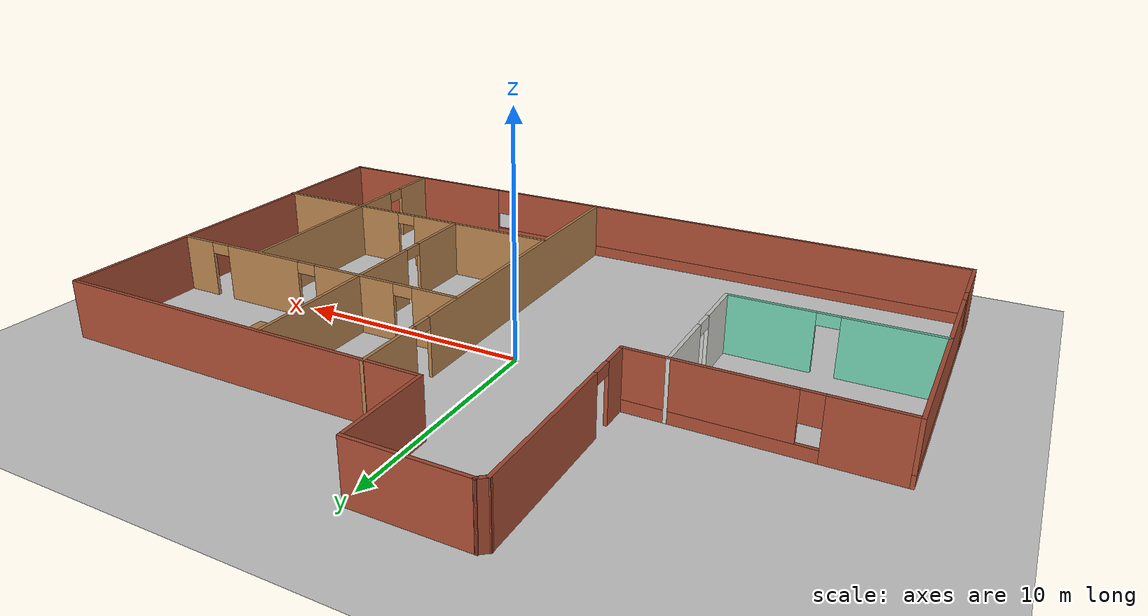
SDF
<sdf version="1.6">
 <world name="default">
  <model name="ground_plane">
   <static>1</static>
   <link name="link">
    <collision name="collision">
     <geometry><plane><normal>0 0 1</normal><size>100 100</size></plane></geometry>
     <surface>
      <contact><collide_bitmask>65535</collide_bitmask></contact>
      <friction><ode><mu>100</mu><mu2>50</mu2></ode></friction>
     </surface>
    </collision>
    <visual name="visual">
     <cast_shadows>0</cast_shadows>
     <geometry><plane><normal>0 0 1</normal><size>100 100</size></plane></geometry>
     <material>
      <script><uri>file://media/materials/scripts/gazebo.material</uri><name>Gazebo/Grey</name></script>
     </material>
    </visual>
   </link>
  </model>
  <model name="strange_room_project_1">
   <pose>0.77042 -0.5223 0 0 -0 0</pose>
   <link name="Wall_1">
    <collision name="Wall_1_Collision">
     <geometry><box><size>4.75 0.15 2.5</size></box></geometry>
     <pose>0 0 1.25 0 -0 0</pose>
    </collision>
    <visual name="Wall_1_Visual">
     <pose>0 0 1.25 0 -0 0</pose>
     <geometry><box><size>4.75 0.15 2.5</size></box></geometry>
     <material>
      <script><uri>file://media/materials/scripts/gazebo.material</uri><name>Gazebo/Bricks</name></script>
      <ambient>0.435294 0.796078 0.67451 1</ambient>
     </material>
     <meta><layer>0</layer></meta>
    </visual>
    <pose>-3.26123 11.2097 0 0 -0 0</pose>
   </link>
   <link name="Wall_10">
    <collision name="Wall_10_Collision">
     <geometry><box><size>0.540512 0.15 2.5</size></box></geometry>
     <pose>0 0 1.25 0 -0 0</pose>
    </collision>
    <visual name="Wall_10_Visual">
     <pose>0 0 1.25 0 -0 0</pose>
     <geometry><box><size>0.540512 0.15 2.5</size></box></geometry>
     <material>
      <script><uri>file://media/materials/scripts/gazebo.material</uri><name>Gazebo/Bricks</name></script>
      <ambient>0.435294 0.796078 0.67451 1</ambient>
     </material>
     <meta><layer>0</layer></meta>
    </visual>
    <pose>-5.71122 11.0847 0 0 -0 0.694738</pose>
   </link>
   <link name="Wall_12">
    <pose>-7.58378 -0.937122 0 0 0 -1.5708</pose>
    <visual name="Wall_12_Visual_0">
     <pose>-1.59262 0 1.25 0 -0 0</pose>
     <geometry><box><size>3.06475 0.15 2.5</size></box></geometry>
     <material>
      <script><uri>file://media/materials/scripts/gazebo.material</uri><name>Gazebo/CeilingTiled</name></script>
      <ambient>0.435294 0.796078 0.67451 1</ambient>
     </material>
     <meta><layer>0</layer></meta>
    </visual>
    <collision name="Wall_12_Collision_0">
     <geometry><box><size>3.06475 0.15 2.5</size></box></geometry>
     <pose>-1.59262 0 1.25 0 -0 0</pose>
    </collision>
    <visual name="Wall_12_Visual_1">
     <pose>1.98238 0 1.25 0 -0 0</pose>
     <geometry><box><size>2.28525 0.15 2.5</size></box></geometry>
     <material>
      <script><uri>file://media/materials/scripts/gazebo.material</uri><name>Gazebo/CeilingTiled</name></script>
      <ambient>0.435294 0.796078 0.67451 1</ambient>
     </material>
     <meta><layer>0</layer></meta>
    </visual>
    <collision name="Wall_12_Collision_1">
     <geometry><box><size>2.28525 0.15 2.5</size></box></geometry>
     <pose>1.98238 0 1.25 0 -0 0</pose>
    </collision>
    <visual name="Wall_12_Visual_2">
     <pose>0.389755 0 2.25 0 -0 0</pose>
     <geometry><box><size>0.9 0.15 0.5</size></box></geometry>
     <material>
      <script><uri>file://media/materials/scripts/gazebo.material</uri><name>Gazebo/CeilingTiled</name></script>
      <ambient>0.435294 0.796078 0.67451 1</ambient>
     </material>
     <meta><layer>0</layer></meta>
    </visual>
    <collision name="Wall_12_Collision_2">
     <geometry><box><size>0.9 0.15 0.5</size></box></geometry>
     <pose>0.389755 0 2.25 0 -0 0</pose>
    </collision>
   </link>
   <link name="Wall_15">
    <pose>-11.6338 -3.98712 0 0 -0 3.14159</pose>
    <visual name="Wall_15_Visual_0">
     <pose>-2.35227 0 1.25 0 -0 0</pose>
     <geometry><box><size>3.54546 0.15 2.5</size></box></geometry>
     <material>
      <script><uri>file://media/materials/scripts/gazebo.material</uri><name>Gazebo/Grey</name></script>
      <ambient>0.435294 0.796078 0.67451 1</ambient>
     </material>
     <meta><layer>0</layer></meta>
    </visual>
    <collision name="Wall_15_Collision_0">
     <geometry><box><size>3.54546 0.15 2.5</size></box></geometry>
     <pose>-2.35227 0 1.25 0 -0 0</pose>
    </collision>
    <visual name="Wall_15_Visual_1">
     <pose>2.22273 0 1.25 0 -0 0</pose>
     <geometry><box><size>3.80455 0.15 2.5</size></box></geometry>
     <material>
      <script><uri>file://media/materials/scripts/gazebo.material</uri><name>Gazebo/Grey</name></script>
      <ambient>0.435294 0.796078 0.67451 1</ambient>
     </material>
     <meta><layer>0</layer></meta>
    </visual>
    <collision name="Wall_15_Collision_1">
     <geometry><box><size>3.80455 0.15 2.5</size></box></geometry>
     <pose>2.22273 0 1.25 0 -0 0</pose>
    </collision>
    <visual name="Wall_15_Visual_2">
     <pose>-0.129545 0 2.25 0 -0 0</pose>
     <geometry><box><size>0.9 0.15 0.5</size></box></geometry>
     <material>
      <script><uri>file://media/materials/scripts/gazebo.material</uri><name>Gazebo/Grey</name></script>
      <ambient>0.435294 0.796078 0.67451 1</ambient>
     </material>
     <meta><layer>0</layer></meta>
    </visual>
    <collision name="Wall_15_Collision_2">
     <geometry><box><size>0.9 0.15 0.5</size></box></geometry>
     <pose>-0.129545 0 2.25 0 -0 0</pose>
    </collision>
   </link>
   <link name="Wall_17">
    <pose>1.35237 -2.03802 0 0 0 -1.5708</pose>
    <visual name="Wall_17_Visual_0">
     <pose>-7.7112 0 1.25 0 -0 0</pose>
     <geometry><box><size>3.07761 0.15 2.5</size></box></geometry>
     <material>
      <script><uri>file://media/materials/scripts/gazebo.material</uri><name>Gazebo/Wood</name></script>
      <ambient>0.435294 0.796078 0.67451 1</ambient>
     </material>
     <meta><layer>0</layer></meta>
    </visual>
    <collision name="Wall_17_Collision_0">
     <geometry><box><size>3.07761 0.15 2.5</size></box></geometry>
     <pose>-7.7112 0 1.25 0 -0 0</pose>
    </collision>
    <visual name="Wall_17_Visual_1">
     <pose>1.9888 0 1.25 0 -0 0</pose>
     <geometry><box><size>14.5224 0.15 2.5</size></box></geometry>
     <material>
      <script><uri>file://media/materials/scripts/gazebo.material</uri><name>Gazebo/Wood</name></script>
      <ambient>0.435294 0.796078 0.67451 1</ambient>
     </material>
     <meta><layer>0</layer></meta>
    </visual>
    <collision name="Wall_17_Collision_1">
     <geometry><box><size>14.5224 0.15 2.5</size></box></geometry>
     <pose>1.9888 0 1.25 0 -0 0</pose>
    </collision>
    <visual name="Wall_17_Visual_2">
     <pose>-5.72239 0 2.25 0 -0 0</pose>
     <geometry><box><size>0.9 0.15 0.5</size></box></geometry>
     <material>
      <script><uri>file://media/materials/scripts/gazebo.material</uri><name>Gazebo/Wood</name></script>
      <ambient>0.435294 0.796078 0.67451 1</ambient>
     </material>
     <meta><layer>0</layer></meta>
    </visual>
    <collision name="Wall_17_Collision_2">
     <geometry><box><size>0.9 0.15 0.5</size></box></geometry>
     <pose>-5.72239 0 2.25 0 -0 0</pose>
    </collision>
   </link>
   <link name="Wall_19">
    <pose>8.46168 1.25779 0 0 -0 0</pose>
    <visual name="Wall_19_Visual_0">
     <pose>-6.07739 0 1.25 0 -0 0</pose>
     <geometry><box><size>2.09521 0.15 2.5</size></box></geometry>
     <material>
      <script><uri>file://media/materials/scripts/gazebo.material</uri><name>Gazebo/Wood</name></script>
      <ambient>0.435294 0.796078 0.67451 1</ambient>
     </material>
     <meta><layer>0</layer></meta>
    </visual>
    <collision name="Wall_19_Collision_0">
     <geometry><box><size>2.09521 0.15 2.5</size></box></geometry>
     <pose>-6.07739 0 1.25 0 -0 0</pose>
    </collision>
    <visual name="Wall_19_Visual_1">
     <pose>-2.13756 0 1.25 0 -0 0</pose>
     <geometry><box><size>3.98446 0.15 2.5</size></box></geometry>
     <material>
      <script><uri>file://media/materials/scripts/gazebo.material</uri><name>Gazebo/Wood</name></script>
      <ambient>0.435294 0.796078 0.67451 1</ambient>
     </material>
     <meta><layer>0</layer></meta>
    </visual>
    <collision name="Wall_19_Collision_1">
     <geometry><box><size>3.98446 0.15 2.5</size></box></geometry>
     <pose>-2.13756 0 1.25 0 -0 0</pose>
    </collision>
    <visual name="Wall_19_Visual_2">
     <pose>2.70297 0 1.25 0 -0 0</pose>
     <geometry><box><size>3.8966 0.15 2.5</size></box></geometry>
     <material>
      <script><uri>file://media/materials/scripts/gazebo.material</uri><name>Gazebo/Wood</name></script>
      <ambient>0.435294 0.796078 0.67451 1</ambient>
     </material>
     <meta><layer>0</layer></meta>
    </visual>
    <collision name="Wall_19_Collision_2">
     <geometry><box><size>3.8966 0.15 2.5</size></box></geometry>
     <pose>2.70297 0 1.25 0 -0 0</pose>
    </collision>
    <visual name="Wall_19_Visual_3">
     <pose>6.33814 0 1.25 0 -0 0</pose>
     <geometry><box><size>1.57373 0.15 2.5</size></box></geometry>
     <material>
      <script><uri>file://media/materials/scripts/gazebo.material</uri><name>Gazebo/Wood</name></script>
      <ambient>0.435294 0.796078 0.67451 1</ambient>
     </material>
     <meta><layer>0</layer></meta>
    </visual>
    <collision name="Wall_19_Collision_3">
     <geometry><box><size>1.57373 0.15 2.5</size></box></geometry>
     <pose>6.33814 0 1.25 0 -0 0</pose>
    </collision>
    <visual name="Wall_19_Visual_4">
     <pose>-4.57979 0 2.25 0 -0 0</pose>
     <geometry><box><size>0.9 0.15 0.5</size></box></geometry>
     <material>
      <script><uri>file://media/materials/scripts/gazebo.material</uri><name>Gazebo/Wood</name></script>
      <ambient>0.435294 0.796078 0.67451 1</ambient>
     </material>
     <meta><layer>0</layer></meta>
    </visual>
    <collision name="Wall_19_Collision_4">
     <geometry><box><size>0.9 0.15 0.5</size></box></geometry>
     <pose>-4.57979 0 2.25 0 -0 0</pose>
    </collision>
    <visual name="Wall_19_Visual_5">
     <pose>0.304668 0 2.25 0 -0 0</pose>
     <geometry><box><size>0.9 0.15 0.5</size></box></geometry>
     <material>
      <script><uri>file://media/materials/scripts/gazebo.material</uri><name>Gazebo/Wood</name></script>
      <ambient>0.435294 0.796078 0.67451 1</ambient>
     </material>
     <meta><layer>0</layer></meta>
    </visual>
    <collision name="Wall_19_Collision_5">
     <geometry><box><size>0.9 0.15 0.5</size></box></geometry>
     <pose>0.304668 0 2.25 0 -0 0</pose>
    </collision>
    <visual name="Wall_19_Visual_6">
     <pose>5.10127 0 2.25 0 -0 0</pose>
     <geometry><box><size>0.9 0.15 0.5</size></box></geometry>
     <material>
      <script><uri>file://media/materials/scripts/gazebo.material</uri><name>Gazebo/Wood</name></script>
      <ambient>0.435294 0.796078 0.67451 1</ambient>
     </material>
     <meta><layer>0</layer></meta>
    </visual>
    <collision name="Wall_19_Collision_6">
     <geometry><box><size>0.9 0.15 0.5</size></box></geometry>
     <pose>5.10127 0 2.25 0 -0 0</pose>
    </collision>
   </link>
   <link name="Wall_2">
    <collision name="Wall_2_Collision">
     <geometry><box><size>4.25 0.15 2.5</size></box></geometry>
     <pose>0 0 1.25 0 -0 0</pose>
    </collision>
    <visual name="Wall_2_Visual">
     <pose>0 0 1.25 0 -0 0</pose>
     <geometry><box><size>4.25 0.15 2.5</size></box></geometry>
     <material>
      <script><uri>file://media/materials/scripts/gazebo.material</uri><name>Gazebo/Bricks</name></script>
      <ambient>0.435294 0.796078 0.67451 1</ambient>
     </material>
     <meta><layer>0</layer></meta>
    </visual>
    <pose>-0.961225 9.15968 0 0 0 -1.5708</pose>
   </link>
   <link name="Wall_3">
    <collision name="Wall_3_Collision">
     <geometry><box><size>16.75 0.15 2.5</size></box></geometry>
     <pose>0 0 1.25 0 -0 0</pose>
    </collision>
    <visual name="Wall_3_Visual">
     <pose>0 0 1.25 0 -0 0</pose>
     <geometry><box><size>16.75 0.15 2.5</size></box></geometry>
     <material>
      <script><uri>file://media/materials/scripts/gazebo.material</uri><name>Gazebo/Bricks</name></script>
      <ambient>0.435294 0.796078 0.67451 1</ambient>
     </material>
     <meta><layer>0</layer></meta>
    </visual>
    <pose>7.33878 7.10969 0 0 -0 0</pose>
   </link>
   <link name="Wall_4">
    <collision name="Wall_4_Collision">
     <geometry><box><size>18.5 0.15 2.5</size></box></geometry>
     <pose>0 0 1.25 0 -0 0</pose>
    </collision>
    <visual name="Wall_4_Visual">
     <pose>0 0 1.25 0 -0 0</pose>
     <geometry><box><size>18.5 0.15 2.5</size></box></geometry>
     <material>
      <script><uri>file://media/materials/scripts/gazebo.material</uri><name>Gazebo/Bricks</name></script>
      <ambient>0.435294 0.796078 0.67451 1</ambient>
     </material>
     <meta><layer>0</layer></meta>
    </visual>
    <pose>15.6388 -2.06532 0 0 0 -1.5708</pose>
   </link>
   <link name="Wall_5">
    <pose>-0.036225 -11.2403 0 0 -0 3.14159</pose>
    <visual name="Wall_5_Visual_0">
     <pose>-11.2976 0 1.25 0 -0 0</pose>
     <geometry><box><size>8.90478 0.15 2.5</size></box></geometry>
     <material>
      <script><uri>file://media/materials/scripts/gazebo.material</uri><name>Gazebo/Bricks</name></script>
      <ambient>0.435294 0.796078 0.67451 1</ambient>
     </material>
     <meta><layer>0</layer></meta>
    </visual>
    <collision name="Wall_5_Collision_0">
     <geometry><box><size>8.90478 0.15 2.5</size></box></geometry>
     <pose>-11.2976 0 1.25 0 -0 0</pose>
    </collision>
    <visual name="Wall_5_Visual_1">
     <pose>4.45239 0 0.25 0 -0 0</pose>
     <geometry><box><size>22.5952 0.15 0.5</size></box></geometry>
     <material>
      <script><uri>file://media/materials/scripts/gazebo.material</uri><name>Gazebo/Bricks</name></script>
      <ambient>0.435294 0.796078 0.67451 1</ambient>
     </material>
     <meta><layer>0</layer></meta>
    </visual>
    <collision name="Wall_5_Collision_1">
     <geometry><box><size>22.5952 0.15 0.5</size></box></geometry>
     <pose>4.45239 0 0.25 0 -0 0</pose>
    </collision>
    <visual name="Wall_5_Visual_2">
     <pose>4.85239 0 1.5 0 -0 0</pose>
     <geometry><box><size>21.7952 0.15 2</size></box></geometry>
     <material>
      <script><uri>file://media/materials/scripts/gazebo.material</uri><name>Gazebo/Bricks</name></script>
      <ambient>0.435294 0.796078 0.67451 1</ambient>
     </material>
     <meta><layer>0</layer></meta>
    </visual>
    <collision name="Wall_5_Collision_2">
     <geometry><box><size>21.7952 0.15 2</size></box></geometry>
     <pose>4.85239 0 1.5 0 -0 0</pose>
    </collision>
    <visual name="Wall_5_Visual_3">
     <pose>-6.44522 0 1.9 0 -0 0</pose>
     <geometry><box><size>0.8 0.15 1.2</size></box></geometry>
     <material>
      <script><uri>file://media/materials/scripts/gazebo.material</uri><name>Gazebo/Bricks</name></script>
      <ambient>0.435294 0.796078 0.67451 1</ambient>
     </material>
     <meta><layer>0</layer></meta>
    </visual>
    <collision name="Wall_5_Collision_3">
     <geometry><box><size>0.8 0.15 1.2</size></box></geometry>
     <pose>-6.44522 0 1.9 0 -0 0</pose>
    </collision>
   </link>
   <link name="Wall_6">
    <pose>-15.7112 -4.56531 0 0 -0 1.5708</pose>
    <visual name="Wall_6_Visual_0">
     <pose>-5.38753 0 1.25 0 -0 0</pose>
     <geometry><box><size>2.72495 0.15 2.5</size></box></geometry>
     <material>
      <script><uri>file://media/materials/scripts/gazebo.material</uri><name>Gazebo/Bricks</name></script>
      <ambient>0.435294 0.796078 0.67451 1</ambient>
     </material>
     <meta><layer>0</layer></meta>
    </visual>
    <collision name="Wall_6_Collision_0">
     <geometry><box><size>2.72495 0.15 2.5</size></box></geometry>
     <pose>-5.38753 0 1.25 0 -0 0</pose>
    </collision>
    <visual name="Wall_6_Visual_1">
     <pose>1.36247 0 0.25 0 -0 0</pose>
     <geometry><box><size>10.7751 0.15 0.5</size></box></geometry>
     <material>
      <script><uri>file://media/materials/scripts/gazebo.material</uri><name>Gazebo/Bricks</name></script>
      <ambient>0.435294 0.796078 0.67451 1</ambient>
     </material>
     <meta><layer>0</layer></meta>
    </visual>
    <collision name="Wall_6_Collision_1">
     <geometry><box><size>10.7751 0.15 0.5</size></box></geometry>
     <pose>1.36247 0 0.25 0 -0 0</pose>
    </collision>
    <visual name="Wall_6_Visual_2">
     <pose>1.76247 0 1.5 0 -0 0</pose>
     <geometry><box><size>9.97505 0.15 2</size></box></geometry>
     <material>
      <script><uri>file://media/materials/scripts/gazebo.material</uri><name>Gazebo/Bricks</name></script>
      <ambient>0.435294 0.796078 0.67451 1</ambient>
     </material>
     <meta><layer>0</layer></meta>
    </visual>
    <collision name="Wall_6_Collision_2">
     <geometry><box><size>9.97505 0.15 2</size></box></geometry>
     <pose>1.76247 0 1.5 0 -0 0</pose>
    </collision>
    <visual name="Wall_6_Visual_3">
     <pose>-3.62505 0 1.9 0 -0 0</pose>
     <geometry><box><size>0.8 0.15 1.2</size></box></geometry>
     <material>
      <script><uri>file://media/materials/scripts/gazebo.material</uri><name>Gazebo/Bricks</name></script>
      <ambient>0.435294 0.796078 0.67451 1</ambient>
     </material>
     <meta><layer>0</layer></meta>
    </visual>
    <collision name="Wall_6_Collision_3">
     <geometry><box><size>0.8 0.15 1.2</size></box></geometry>
     <pose>-3.62505 0 1.9 0 -0 0</pose>
    </collision>
   </link>
   <link name="Wall_65">
    <pose>8.53623 -5.87592 0 0 -0 3.14159</pose>
    <visual name="Wall_65_Visual_0">
     <pose>-3.95776 0 1.25 0 -0 0</pose>
     <geometry><box><size>6.58449 0.15 2.5</size></box></geometry>
     <material>
      <script><uri>file://media/materials/scripts/gazebo.material</uri><name>Gazebo/Wood</name></script>
      <ambient>0.435294 0.796078 0.67451 1</ambient>
     </material>
     <meta><layer>0</layer></meta>
    </visual>
    <collision name="Wall_65_Collision_0">
     <geometry><box><size>6.58449 0.15 2.5</size></box></geometry>
     <pose>-3.95776 0 1.25 0 -0 0</pose>
    </collision>
    <visual name="Wall_65_Visual_1">
     <pose>3.74224 0 1.25 0 -0 0</pose>
     <geometry><box><size>7.01551 0.15 2.5</size></box></geometry>
     <material>
      <script><uri>file://media/materials/scripts/gazebo.material</uri><name>Gazebo/Wood</name></script>
      <ambient>0.435294 0.796078 0.67451 1</ambient>
     </material>
     <meta><layer>0</layer></meta>
    </visual>
    <collision name="Wall_65_Collision_1">
     <geometry><box><size>7.01551 0.15 2.5</size></box></geometry>
     <pose>3.74224 0 1.25 0 -0 0</pose>
    </collision>
    <visual name="Wall_65_Visual_2">
     <pose>-0.215513 0 2.25 0 -0 0</pose>
     <geometry><box><size>0.9 0.15 0.5</size></box></geometry>
     <material>
      <script><uri>file://media/materials/scripts/gazebo.material</uri><name>Gazebo/Wood</name></script>
      <ambient>0.435294 0.796078 0.67451 1</ambient>
     </material>
     <meta><layer>0</layer></meta>
    </visual>
    <collision name="Wall_65_Collision_2">
     <geometry><box><size>0.9 0.15 0.5</size></box></geometry>
     <pose>-0.215513 0 2.25 0 -0 0</pose>
    </collision>
   </link>
   <link name="Wall_7">
    <pose>-10.7862 2.10968 0 0 -0 0</pose>
    <visual name="Wall_7_Visual_0">
     <pose>-3.51411 0 1.25 0 -0 0</pose>
     <geometry><box><size>2.97177 0.15 2.5</size></box></geometry>
     <material>
      <script><uri>file://media/materials/scripts/gazebo.material</uri><name>Gazebo/Bricks</name></script>
      <ambient>0.435294 0.796078 0.67451 1</ambient>
     </material>
     <meta><layer>0</layer></meta>
    </visual>
    <collision name="Wall_7_Collision_0">
     <geometry><box><size>2.97177 0.15 2.5</size></box></geometry>
     <pose>-3.51411 0 1.25 0 -0 0</pose>
    </collision>
    <visual name="Wall_7_Visual_1">
     <pose>1.48589 0 0.25 0 -0 0</pose>
     <geometry><box><size>7.02823 0.15 0.5</size></box></geometry>
     <material>
      <script><uri>file://media/materials/scripts/gazebo.material</uri><name>Gazebo/Bricks</name></script>
      <ambient>0.435294 0.796078 0.67451 1</ambient>
     </material>
     <meta><layer>0</layer></meta>
    </visual>
    <collision name="Wall_7_Collision_1">
     <geometry><box><size>7.02823 0.15 0.5</size></box></geometry>
     <pose>1.48589 0 0.25 0 -0 0</pose>
    </collision>
    <visual name="Wall_7_Visual_2">
     <pose>1.88589 0 1.5 0 -0 0</pose>
     <geometry><box><size>6.22823 0.15 2</size></box></geometry>
     <material>
      <script><uri>file://media/materials/scripts/gazebo.material</uri><name>Gazebo/Bricks</name></script>
      <ambient>0.435294 0.796078 0.67451 1</ambient>
     </material>
     <meta><layer>0</layer></meta>
    </visual>
    <collision name="Wall_7_Collision_2">
     <geometry><box><size>6.22823 0.15 2</size></box></geometry>
     <pose>1.88589 0 1.5 0 -0 0</pose>
    </collision>
    <visual name="Wall_7_Visual_3">
     <pose>-1.62823 0 1.9 0 -0 0</pose>
     <geometry><box><size>0.8 0.15 1.2</size></box></geometry>
     <material>
      <script><uri>file://media/materials/scripts/gazebo.material</uri><name>Gazebo/Bricks</name></script>
      <ambient>0.435294 0.796078 0.67451 1</ambient>
     </material>
     <meta><layer>0</layer></meta>
    </visual>
    <collision name="Wall_7_Collision_3">
     <geometry><box><size>0.8 0.15 1.2</size></box></geometry>
     <pose>-1.62823 0 1.9 0 -0 0</pose>
    </collision>
   </link>
   <link name="Wall_74">
    <pose>11.3966 -5.06353 0 0 -0 1.5708</pose>
    <visual name="Wall_74_Visual_0">
     <pose>-5.1078 0 1.25 0 -0 0</pose>
     <geometry><box><size>2.2844 0.15 2.5</size></box></geometry>
     <material>
      <script><uri>file://media/materials/scripts/gazebo.material</uri><name>Gazebo/Wood</name></script>
      <ambient>0.435294 0.796078 0.67451 1</ambient>
     </material>
     <meta><layer>0</layer></meta>
    </visual>
    <collision name="Wall_74_Collision_0">
     <geometry><box><size>2.2844 0.15 2.5</size></box></geometry>
     <pose>-5.1078 0 1.25 0 -0 0</pose>
    </collision>
    <visual name="Wall_74_Visual_1">
     <pose>1.5922 0 1.25 0 -0 0</pose>
     <geometry><box><size>9.3156 0.15 2.5</size></box></geometry>
     <material>
      <script><uri>file://media/materials/scripts/gazebo.material</uri><name>Gazebo/Wood</name></script>
      <ambient>0.435294 0.796078 0.67451 1</ambient>
     </material>
     <meta><layer>0</layer></meta>
    </visual>
    <collision name="Wall_74_Collision_1">
     <geometry><box><size>9.3156 0.15 2.5</size></box></geometry>
     <pose>1.5922 0 1.25 0 -0 0</pose>
    </collision>
    <visual name="Wall_74_Visual_2">
     <pose>-3.5156 0 2.25 0 -0 0</pose>
     <geometry><box><size>0.9 0.15 0.5</size></box></geometry>
     <material>
      <script><uri>file://media/materials/scripts/gazebo.material</uri><name>Gazebo/Wood</name></script>
      <ambient>0.435294 0.796078 0.67451 1</ambient>
     </material>
     <meta><layer>0</layer></meta>
    </visual>
    <collision name="Wall_74_Collision_2">
     <geometry><box><size>0.9 0.15 0.5</size></box></geometry>
     <pose>-3.5156 0 2.25 0 -0 0</pose>
    </collision>
   </link>
   <link name="Wall_76">
    <pose>6.03149 0.555756 0 0 -0 1.5708</pose>
    <visual name="Wall_76_Visual_0">
     <pose>-4.96159 0 1.25 0 -0 0</pose>
     <geometry><box><size>3.07682 0.15 2.5</size></box></geometry>
     <material>
      <script><uri>file://media/materials/scripts/gazebo.material</uri><name>Gazebo/Wood</name></script>
      <ambient>0.435294 0.796078 0.67451 1</ambient>
     </material>
     <meta><layer>0</layer></meta>
    </visual>
    <collision name="Wall_76_Collision_0">
     <geometry><box><size>3.07682 0.15 2.5</size></box></geometry>
     <pose>-4.96159 0 1.25 0 -0 0</pose>
    </collision>
    <visual name="Wall_76_Visual_1">
     <pose>1.98841 0 1.25 0 -0 0</pose>
     <geometry><box><size>9.02318 0.15 2.5</size></box></geometry>
     <material>
      <script><uri>file://media/materials/scripts/gazebo.material</uri><name>Gazebo/Wood</name></script>
      <ambient>0.435294 0.796078 0.67451 1</ambient>
     </material>
     <meta><layer>0</layer></meta>
    </visual>
    <collision name="Wall_76_Collision_1">
     <geometry><box><size>9.02318 0.15 2.5</size></box></geometry>
     <pose>1.98841 0 1.25 0 -0 0</pose>
    </collision>
    <visual name="Wall_76_Visual_2">
     <pose>-2.97318 0 2.25 0 -0 0</pose>
     <geometry><box><size>0.9 0.15 0.5</size></box></geometry>
     <material>
      <script><uri>file://media/materials/scripts/gazebo.material</uri><name>Gazebo/Wood</name></script>
      <ambient>0.435294 0.796078 0.67451 1</ambient>
     </material>
     <meta><layer>0</layer></meta>
    </visual>
    <collision name="Wall_76_Collision_2">
     <geometry><box><size>0.9 0.15 0.5</size></box></geometry>
     <pose>-2.97318 0 2.25 0 -0 0</pose>
    </collision>
   </link>
   <link name="Wall_9">
    <pose>-5.86123 6.53468 0 0 -0 1.5708</pose>
    <visual name="Wall_9_Visual_0">
     <pose>-3.86428 0 1.25 0 -0 0</pose>
     <geometry><box><size>1.27144 0.15 2.5</size></box></geometry>
     <material>
      <script><uri>file://media/materials/scripts/gazebo.material</uri><name>Gazebo/Bricks</name></script>
      <ambient>0.435294 0.796078 0.67451 1</ambient>
     </material>
     <meta><layer>0</layer></meta>
    </visual>
    <collision name="Wall_9_Collision_0">
     <geometry><box><size>1.27144 0.15 2.5</size></box></geometry>
     <pose>-3.86428 0 1.25 0 -0 0</pose>
    </collision>
    <visual name="Wall_9_Visual_1">
     <pose>1.08572 0 1.25 0 -0 0</pose>
     <geometry><box><size>6.82856 0.15 2.5</size></box></geometry>
     <material>
      <script><uri>file://media/materials/scripts/gazebo.material</uri><name>Gazebo/Bricks</name></script>
      <ambient>0.435294 0.796078 0.67451 1</ambient>
     </material>
     <meta><layer>0</layer></meta>
    </visual>
    <collision name="Wall_9_Collision_1">
     <geometry><box><size>6.82856 0.15 2.5</size></box></geometry>
     <pose>1.08572 0 1.25 0 -0 0</pose>
    </collision>
    <visual name="Wall_9_Visual_2">
     <pose>-2.77856 0 2.25 0 -0 0</pose>
     <geometry><box><size>0.9 0.15 0.5</size></box></geometry>
     <material>
      <script><uri>file://media/materials/scripts/gazebo.material</uri><name>Gazebo/Bricks</name></script>
      <ambient>0.435294 0.796078 0.67451 1</ambient>
     </material>
     <meta><layer>0</layer></meta>
    </visual>
    <collision name="Wall_9_Collision_2">
     <geometry><box><size>0.9 0.15 0.5</size></box></geometry>
     <pose>-2.77856 0 2.25 0 -0 0</pose>
    </collision>
   </link>
   <static>1</static>
  </model>
  <model name="two_wheel_robot_0">
   <link name="link_0_clone">
    <pose>-4e-06 -0.250033 -1e-06 1.5707 -0 0</pose>
    <inertial>
     <mass>1</mass>
     <inertia><ixx>0.145833</ixx><ixy>0</ixy><ixz>0</ixz><iyy>0.145833</iyy><iyz>0</iyz><izz>0.125</izz></inertia>
    </inertial>
    <visual name="visual">
     <geometry><cylinder><radius>0.3</radius><length>0.1</length></cylinder></geometry>
     <material>
      <lighting>1</lighting>
      <script><uri>file://media/materials/scripts/gazebo.material</uri><name>Gazebo/Grey</name></script>
      <shader type="pixel"><normal_map>__default__</normal_map></shader>
      <ambient>0.3 0.3 0.3 1</ambient>
      <diffuse>0.7 0.7 0.7 1</diffuse>
      <specular>0.01 0.01 0.01 1</specular>
      <emissive>0 0 0 1</emissive>
     </material>
    </visual>
    <collision name="collision">
     <geometry><cylinder><radius>0.3</radius><length>0.1</length></cylinder></geometry>
     <surface>
      <friction>
       <ode><mu>1</mu><mu2>1</mu2><fdir1>0 0 0</fdir1><slip1>0</slip1><slip2>0</slip2></ode>
       <torsional>
        <coefficient>1</coefficient>
        <patch_radius>0</patch_radius>
        <surface_radius>0</surface_radius>
        <use_patch_radius>1</use_patch_radius>
        <ode><slip>0</slip></ode>
       </torsional>
      </friction>
      <bounce><restitution_coefficient>0</restitution_coefficient><threshold>1e+06</threshold></bounce>
      <contact>
       <collide_without_contact>0</collide_without_contact>
       <collide_without_contact_bitmask>1</collide_without_contact_bitmask>
       <collide_bitmask>1</collide_bitmask>
       <ode>
        <soft_cfm>0</soft_cfm>
        <soft_erp>0.2</soft_erp>
        <kp>1e+13</kp>
        <kd>1</kd>
        <max_vel>0.01</max_vel>
        <min_depth>0</min_depth>
       </ode>
       <bullet>
        <split_impulse>1</split_impulse>
        <split_impulse_penetration_threshold>-0.01</split_impulse_penetration_threshold>
        <soft_cfm>0</soft_cfm>
        <soft_erp>0.2</soft_erp>
        <kp>1e+13</kp>
        <kd>1</kd>
       </bullet>
      </contact>
     </surface>
    </collision>
   </link>
   <link name="link_0_clone_clone">
    <pose>0 0.319647 1e-06 1.5707 -0 0</pose>
    <inertial>
     <mass>1</mass>
     <inertia><ixx>0.145833</ixx><ixy>0</ixy><ixz>0</ixz><iyy>0.145833</iyy><iyz>0</iyz><izz>0.125</izz></inertia>
    </inertial>
    <visual name="visual">
     <geometry><cylinder><radius>0.3</radius><length>0.1</length></cylinder></geometry>
     <material>
      <lighting>1</lighting>
      <script><uri>file://media/materials/scripts/gazebo.material</uri><name>Gazebo/Grey</name></script>
      <shader type="pixel"><normal_map>__default__</normal_map></shader>
      <ambient>0.3 0.3 0.3 1</ambient>
      <diffuse>0.7 0.7 0.7 1</diffuse>
      <specular>0.01 0.01 0.01 1</specular>
      <emissive>0 0 0 1</emissive>
     </material>
    </visual>
    <collision name="collision">
     <geometry><cylinder><radius>0.3</radius><length>0.1</length></cylinder></geometry>
     <surface>
      <friction>
       <ode><mu>1</mu><mu2>1</mu2><fdir1>0 0 0</fdir1><slip1>0</slip1><slip2>0</slip2></ode>
       <torsional>
        <coefficient>1</coefficient>
        <patch_radius>0</patch_radius>
        <surface_radius>0</surface_radius>
        <use_patch_radius>1</use_patch_radius>
        <ode><slip>0</slip></ode>
       </torsional>
      </friction>
      <bounce><restitution_coefficient>0</restitution_coefficient><threshold>1e+06</threshold></bounce>
      <contact>
       <collide_without_contact>0</collide_without_contact>
       <collide_without_contact_bitmask>1</collide_without_contact_bitmask>
       <collide_bitmask>1</collide_bitmask>
       <ode>
        <soft_cfm>0</soft_cfm>
        <soft_erp>0.2</soft_erp>
        <kp>1e+13</kp>
        <kd>1</kd>
        <max_vel>0.01</max_vel>
        <min_depth>0</min_depth>
       </ode>
       <bullet>
        <split_impulse>1</split_impulse>
        <split_impulse_penetration_threshold>-0.01</split_impulse_penetration_threshold>
        <soft_cfm>0</soft_cfm>
        <soft_erp>0.2</soft_erp>
        <kp>1e+13</kp>
        <kd>1</kd>
       </bullet>
      </contact>
     </surface>
    </collision>
   </link>
   <link name="link_1">
    <pose>-0 -1e-06 0 0 -0 0</pose>
    <inertial>
     <mass>1</mass>
     <inertia>
      <ixx>0.166667</ixx>
      <ixy>0</ixy>
      <ixz>0</ixz>
      <iyy>0.166667</iyy>
      <iyz>0</iyz>
      <izz>0.166667</izz>
     </inertia>
    </inertial>
    <visual name="visual">
     <geometry><box><size>0.3 0.4 0.1</size></box></geometry>
     <material>
      <lighting>1</lighting>
      <script><uri>file://media/materials/scripts/gazebo.material</uri><name>Gazebo/Grey</name></script>
      <shader type="pixel"><normal_map>__default__</normal_map></shader>
      <ambient>0.3 0.3 0.3 1</ambient>
      <diffuse>0.7 0.7 0.7 1</diffuse>
      <specular>0.01 0.01 0.01 1</specular>
      <emissive>0 0 0 1</emissive>
     </material>
    </visual>
    <collision name="collision">
     <geometry><box><size>0.3 0.4 0.1</size></box></geometry>
     <surface>
      <friction>
       <ode><mu>1</mu><mu2>1</mu2><fdir1>0 0 0</fdir1><slip1>0</slip1><slip2>0</slip2></ode>
       <torsional>
        <coefficient>1</coefficient>
        <patch_radius>0</patch_radius>
        <surface_radius>0</surface_radius>
        <use_patch_radius>1</use_patch_radius>
        <ode><slip>0</slip></ode>
       </torsional>
      </friction>
      <bounce><restitution_coefficient>0</restitution_coefficient><threshold>1e+06</threshold></bounce>
      <contact>
       <collide_without_contact>0</collide_without_contact>
       <collide_without_contact_bitmask>1</collide_without_contact_bitmask>
       <collide_bitmask>1</collide_bitmask>
       <ode>
        <soft_cfm>0</soft_cfm>
        <soft_erp>0.2</soft_erp>
        <kp>1e+13</kp>
        <kd>1</kd>
        <max_vel>0.01</max_vel>
        <min_depth>0</min_depth>
       </ode>
       <bullet>
        <split_impulse>1</split_impulse>
        <split_impulse_penetration_threshold>-0.01</split_impulse_penetration_threshold>
        <soft_cfm>0</soft_cfm>
        <soft_erp>0.2</soft_erp>
        <kp>1e+13</kp>
        <kd>1</kd>
       </bullet>
      </contact>
     </surface>
    </collision>
   </link>
   <joint name="link_1_JOINT_0" type="revolute">
    <parent>link_1</parent>
    <child>link_0_clone</child>
    <axis>
     <xyz>0 0 1</xyz>
     <use_parent_model_frame>0</use_parent_model_frame>
     <limit>
      <lower>-1.79769e+308</lower>
      <upper>1.79769e+308</upper>
      <effort>-1</effort>
      <velocity>-1</velocity>
     </limit>
     <dynamics>
      <spring_reference>0</spring_reference>
      <spring_stiffness>0</spring_stiffness>
      <damping>0</damping>
     </dynamics>
    </axis>
    <physics>
     <ode><limit><cfm>0</cfm><erp>0.2</erp></limit><suspension><cfm>0</cfm><erp>0.2</erp></suspension></ode>
    </physics>
   </joint>
   <joint name="link_1_JOINT_1" type="revolute">
    <parent>link_1</parent>
    <child>link_0_clone_clone</child>
    <axis>
     <xyz>0 0 1</xyz>
     <use_parent_model_frame>0</use_parent_model_frame>
     <limit>
      <lower>-1.79769e+308</lower>
      <upper>1.79769e+308</upper>
      <effort>-1</effort>
      <velocity>-1</velocity>
     </limit>
     <dynamics>
      <spring_reference>0</spring_reference>
      <spring_stiffness>0</spring_stiffness>
      <damping>0</damping>
     </dynamics>
    </axis>
    <physics>
     <ode><limit><cfm>0</cfm><erp>0.2</erp></limit><suspension><cfm>0</cfm><erp>0.2</erp></suspension></ode>
    </physics>
   </joint>
   <static>0</static>
   <pose>4.60322 -7.82181 0.300004 3.14159 0.3721 2.78685</pose>
  </model>
  <model name="bookshelf">
   <static>1</static>
   <link name="link">
    <inertial><mass>1</mass></inertial>
    <collision name="back">
     <pose>0 0.005 0.6 0 -0 0</pose>
     <geometry><box><size>0.9 0.01 1.2</size></box></geometry>
    </collision>
    <visual name="visual1">
     <pose>0 0.005 0.6 0 -0 0</pose>
     <geometry><box><size>0.9 0.01 1.2</size></box></geometry>
     <material>
      <script><uri>file://media/materials/scripts/gazebo.material</uri><name>Gazebo/Wood</name></script>
     </material>
    </visual>
    <collision name="left_side">
     <pose>0.45 -0.195 0.6 0 -0 0</pose>
     <geometry><box><size>0.02 0.4 1.2</size></box></geometry>
    </collision>
    <visual name="visual2">
     <pose>0.45 -0.195 0.6 0 -0 0</pose>
     <geometry><box><size>0.02 0.4 1.2</size></box></geometry>
     <material>
      <script><uri>file://media/materials/scripts/gazebo.material</uri><name>Gazebo/Wood</name></script>
     </material>
    </visual>
    <collision name="right_side">
     <pose>-0.45 -0.195 0.6 0 -0 0</pose>
     <geometry><box><size>0.02 0.4 1.2</size></box></geometry>
    </collision>
    <visual name="visual3">
     <pose>-0.45 -0.195 0.6 0 -0 0</pose>
     <geometry><box><size>0.02 0.4 1.2</size></box></geometry>
     <material>
      <script><uri>file://media/materials/scripts/gazebo.material</uri><name>Gazebo/Wood</name></script>
     </material>
    </visual>
    <collision name="bottom">
     <pose>0 -0.195 0.03 0 -0 0</pose>
     <geometry><box><size>0.88 0.4 0.06</size></box></geometry>
    </collision>
    <visual name="visual4">
     <pose>0 -0.195 0.03 0 -0 0</pose>
     <geometry><box><size>0.88 0.4 0.06</size></box></geometry>
     <material>
      <script><uri>file://media/materials/scripts/gazebo.material</uri><name>Gazebo/Wood</name></script>
     </material>
    </visual>
    <collision name="top">
     <pose>0 -0.195 1.19 0 -0 0</pose>
     <geometry><box><size>0.88 0.4 0.02</size></box></geometry>
    </collision>
    <visual name="visual5">
     <pose>0 -0.195 1.19 0 -0 0</pose>
     <geometry><box><size>0.88 0.4 0.02</size></box></geometry>
     <material>
      <script><uri>file://media/materials/scripts/gazebo.material</uri><name>Gazebo/Wood</name></script>
     </material>
    </visual>
    <collision name="low_shelf">
     <pose>0 -0.195 0.43 0 -0 0</pose>
     <geometry><box><size>0.88 0.4 0.02</size></box></geometry>
    </collision>
    <visual name="visual6">
     <pose>0 -0.195 0.43 0 -0 0</pose>
     <geometry><box><size>0.88 0.4 0.02</size></box></geometry>
     <material>
      <script><uri>file://media/materials/scripts/gazebo.material</uri><name>Gazebo/Wood</name></script>
     </material>
    </visual>
    <collision name="high_shelf">
     <pose>0 -0.195 0.8 0 -0 0</pose>
     <geometry><box><size>0.88 0.4 0.02</size></box></geometry>
    </collision>
    <visual name="visual7">
     <pose>0 -0.195 0.8 0 -0 0</pose>
     <geometry><box><size>0.88 0.4 0.02</size></box></geometry>
     <material>
      <script><uri>file://media/materials/scripts/gazebo.material</uri><name>Gazebo/Wood</name></script>
     </material>
    </visual>
   </link>
   <pose>7.70525 -6.81529 0 0 -0 0</pose>
  </model>
  <model name="cabinet">
   <static>1</static>
   <link name="cabinet_bottom_plate">
    <inertial>
     <pose>0 0 -1 0 -0 0</pose>
     <inertia><ixx>2.05</ixx><ixy>0</ixy><ixz>0</ixz><iyy>2.05</iyy><iyz>0</iyz><izz>2.05</izz></inertia>
     <mass>25</mass>
    </inertial>
    <collision name="cabinet_bottom_plate_geom">
     <pose>0 0 0.01 0 -0 0</pose>
     <geometry><box><size>0.45 0.45 0.02</size></box></geometry>
    </collision>
    <visual name="cabinet_bottom_plate_geom_visual">
     <pose>0 0 0.01 0 -0 0</pose>
     <geometry><box><size>0.45 0.45 0.02</size></box></geometry>
     <material>
      <script><uri>file://media/materials/scripts/gazebo.material</uri><name>Gazebo/Wood</name></script>
     </material>
    </visual>
    <collision name="cabinet_bottom_plate_geom_cabinet_back_plate">
     <pose>0.235 0 0.51 0 -0 0</pose>
     <geometry><box><size>0.02 0.45 1.02</size></box></geometry>
    </collision>
    <visual name="cabinet_bottom_plate_geom_cabinet_back_plate_visual">
     <pose>0.235 0 0.51 0 -0 0</pose>
     <geometry><box><size>0.02 0.45 1.02</size></box></geometry>
     <material>
      <script><uri>file://media/materials/scripts/gazebo.material</uri><name>Gazebo/Wood</name></script>
     </material>
    </visual>
    <collision name="cabinet_bottom_plate_geom_cabinet_left_plate">
     <pose>0 0.235 0.51 0 -0 0</pose>
     <geometry><box><size>0.45 0.02 1.02</size></box></geometry>
    </collision>
    <visual name="cabinet_bottom_plate_geom_cabinet_left_plate_visual">
     <pose>0 0.235 0.51 0 -0 0</pose>
     <geometry><box><size>0.45 0.02 1.02</size></box></geometry>
     <material>
      <script><uri>file://media/materials/scripts/gazebo.material</uri><name>Gazebo/Wood</name></script>
     </material>
    </visual>
    <collision name="cabinet_bottom_plate_geom_cabinet_middle_plate">
     <pose>0 0 0.51 0 -0 0</pose>
     <geometry><box><size>0.45 0.45 0.02</size></box></geometry>
    </collision>
    <visual name="cabinet_bottom_plate_geom_cabinet_middle_plate_visual">
     <pose>0 0 0.51 0 -0 0</pose>
     <geometry><box><size>0.45 0.45 0.02</size></box></geometry>
     <material>
      <script><uri>file://media/materials/scripts/gazebo.material</uri><name>Gazebo/Wood</name></script>
     </material>
    </visual>
    <collision name="cabinet_bottom_plate_geom_cabinet_right_plate">
     <pose>0 -0.235 0.51 0 -0 0</pose>
     <geometry><box><size>0.45 0.02 1.02</size></box></geometry>
    </collision>
    <visual name="cabinet_bottom_plate_geom_cabinet_right_plate_visual">
     <pose>0 -0.235 0.51 0 -0 0</pose>
     <geometry><box><size>0.45 0.02 1.02</size></box></geometry>
     <material>
      <script><uri>file://media/materials/scripts/gazebo.material</uri><name>Gazebo/Wood</name></script>
     </material>
    </visual>
    <collision name="cabinet_bottom_plate_geom_cabinet_top_plate">
     <pose>0 0 1.01 0 -0 0</pose>
     <geometry><box><size>0.45 0.45 0.02</size></box></geometry>
    </collision>
    <visual name="cabinet_bottom_plate_geom_cabinet_top_plate_visual">
     <pose>0 0 1.01 0 -0 0</pose>
     <geometry><box><size>0.45 0.45 0.02</size></box></geometry>
     <material>
      <script><uri>file://media/materials/scripts/gazebo.material</uri><name>Gazebo/Wood</name></script>
     </material>
    </visual>
   </link>
   <pose>12.7476 -7.009 0 0 -0 0</pose>
  </model>
  <model name="table">
   <static>1</static>
   <link name="link">
    <collision name="surface">
     <pose>0 0 1 0 -0 0</pose>
     <geometry><box><size>1.5 0.8 0.03</size></box></geometry>
     <surface><friction><ode><mu>0.6</mu><mu2>0.6</mu2></ode></friction></surface>
    </collision>
    <visual name="visual1">
     <pose>0 0 1 0 -0 0</pose>
     <geometry><box><size>1.5 0.8 0.03</size></box></geometry>
     <material>
      <script><uri>file://media/materials/scripts/gazebo.material</uri><name>Gazebo/Wood</name></script>
     </material>
    </visual>
    <collision name="front_left_leg">
     <pose>0.68 0.38 0.5 0 -0 0</pose>
     <geometry><cylinder><radius>0.02</radius><length>1</length></cylinder></geometry>
    </collision>
    <visual name="front_left_leg">
     <pose>0.68 0.38 0.5 0 -0 0</pose>
     <geometry><cylinder><radius>0.02</radius><length>1</length></cylinder></geometry>
     <material>
      <script><uri>file://media/materials/scripts/gazebo.material</uri><name>Gazebo/Grey</name></script>
     </material>
    </visual>
    <collision name="front_right_leg">
     <pose>0.68 -0.38 0.5 0 -0 0</pose>
     <geometry><cylinder><radius>0.02</radius><length>1</length></cylinder></geometry>
    </collision>
    <visual name="front_right_leg">
     <pose>0.68 -0.38 0.5 0 -0 0</pose>
     <geometry><cylinder><radius>0.02</radius><length>1</length></cylinder></geometry>
     <material>
      <script><uri>file://media/materials/scripts/gazebo.material</uri><name>Gazebo/Grey</name></script>
     </material>
    </visual>
    <collision name="back_right_leg">
     <pose>-0.68 -0.38 0.5 0 -0 0</pose>
     <geometry><cylinder><radius>0.02</radius><length>1</length></cylinder></geometry>
    </collision>
    <visual name="back_right_leg">
     <pose>-0.68 -0.38 0.5 0 -0 0</pose>
     <geometry><cylinder><radius>0.02</radius><length>1</length></cylinder></geometry>
     <material>
      <script><uri>file://media/materials/scripts/gazebo.material</uri><name>Gazebo/Grey</name></script>
     </material>
    </visual>
    <collision name="back_left_leg">
     <pose>-0.68 0.38 0.5 0 -0 0</pose>
     <geometry><cylinder><radius>0.02</radius><length>1</length></cylinder></geometry>
    </collision>
    <visual name="back_left_leg">
     <pose>-0.68 0.38 0.5 0 -0 0</pose>
     <geometry><cylinder><radius>0.02</radius><length>1</length></cylinder></geometry>
     <material>
      <script><uri>file://media/materials/scripts/gazebo.material</uri><name>Gazebo/Grey</name></script>
     </material>
    </visual>
   </link>
   <pose>8.85713 4.02259 0 0 -0 0</pose>
  </model>
 </world>
</sdf>
